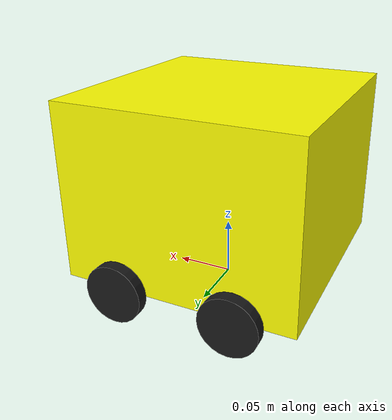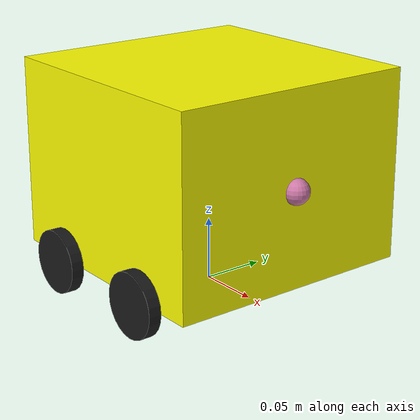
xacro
<?xml version="1.0"?>

<robot name="wallington" xmlns:xacro="http://ros.org/wiki/xacro">

    <xacro:include filename="$(find wallington_description)/urdf/wallington_gazebo.xacro"/>
    <xacro:include filename="$(find wallington_description)/urdf/wallington_ros2_control.xacro"/>

    <link name="base_footprint" />

    <link name="chassis_link">
        <!-- O robô está com o tamanho certo de chassi, mas falta acertar a massa, meshes e matriz de inércia bonitinho-->
        <inertial>
            <origin xyz="0 0 0.075" rpy="0 0 0"/>
            <mass value = "0.15" />
            <inertia ixx="0.0015625" ixy="0" ixz="0"
                     iyy="0.0015625" iyz="0"
                     izz="0.002" />
        </inertial>
        <visual name="chassis_visual">
            <origin xyz="0 0 0" rpy="0 0 0" />
            <geometry>
                <box size="0.2 0.2 0.15" />
            </geometry>
            <material name="yellow"><color rgba="1.0 1.0 0.0 1.0"/></material>
        </visual>
        <collision name="chassis_collision">
            <origin xyz="0 0 0" rpy="0 0 0" />
            <geometry>
                <box size="0.2 0.2 0.15" />
            </geometry>
        </collision>
    </link>

    <joint name="chassis_joint" type="fixed">
        <parent link="base_footprint"/>
        <child link="chassis_link"/>
        <origin xyz= "0 0 0.1" rpy="0 0 0"/>
    </joint>

    <link name="front_left_wheel_link">
        <inertial>
            <origin xyz="0 0 0" rpy="0 0 0"/>
            <mass value="0.1"/>
            <inertia ixx="1.645833e-5" ixy="0.0" ixz="0.0"
                     iyy="3.125e-5" iyz="0.0"
                     izz="1.645833e-5"/>
        </inertial>

        <visual name='front_left_wheel_visual'>
            <origin xyz="0 0 0" rpy="1.57 0 0" />
            <geometry>
                <cylinder radius="0.025" length="0.01"/>
            </geometry>
            <material name="black"><color rgba="0.1 0.1 0.1 1.0"/></material>
        </visual>

        <collision name='front_left_wheel_collision'>
            <origin xyz="0 0 0" rpy="1.57 0 0"/>
            <geometry>
                <cylinder radius="0.025" length="0.01"/>
            </geometry>
        </collision>
    </link>

    <joint name="front_left_wheel_joint" type="continuous">
        <origin xyz="0.05 0.105 -0.075" rpy="0.0 0.0 0.0"/>
        <parent link="chassis_link"/>
        <child link ="front_left_wheel_link"/>
        <axis xyz="0 1 0"/>
    </joint>

    <link name="front_right_wheel_link">
        <inertial>
            <origin xyz="0 0 0" rpy="0 0 0"/>
            <mass value="0.1"/>
            <inertia ixx="1.645833e-5" ixy="0.0" ixz="0.0"
                     iyy="3.125e-5" iyz="0.0"
                     izz="1.645833e-5"/>
        </inertial>

        <visual name='front_right_wheel_visual'>
            <origin xyz="0 0 0" rpy="1.57 0 0" />
            <geometry>
                <cylinder radius="0.025" length="0.01"/>
            </geometry>
            <material name="black"><color rgba="0.1 0.1 0.1 1.0"/></material>
        </visual>

        <collision name='front_right_wheel_collision'>
            <origin xyz="0 0 0" rpy="1.57 0 0"/>
            <geometry>
                <cylinder radius="0.025" length="0.01"/>
            </geometry>
        </collision>
    </link>

    <joint name="front_right_wheel_joint" type="continuous">
        <origin xyz="0.05 -0.105 -0.075" rpy="0.0 0.0 0.0"/>
        <parent link="chassis_link"/>
        <child link ="front_right_wheel_link"/>
        <axis xyz="0 1 0"/>
    </joint>

    <link name="back_left_wheel_link">
        <inertial>
            <origin xyz="0 0 0" rpy="0 0 0"/>
            <mass value="0.1"/>
            <inertia ixx="1.645833e-5" ixy="0.0" ixz="0.0"
                     iyy="3.125e-5" iyz="0.0"
                     izz="1.645833e-5"/>
        </inertial>

        <visual name='back_left_wheel_visual'>
            <origin xyz="0 0 0" rpy="1.57 0 0" />
            <geometry>
                <cylinder radius="0.025" length="0.01"/>
            </geometry>
            <material name="black"><color rgba="0.1 0.1 0.1 1.0"/></material>
        </visual>

        <collision name='back_left_wheel_collision'>
            <origin xyz="0 0 0" rpy="1.57 0 0"/>
            <geometry>
                <cylinder radius="0.025" length="0.01"/>
            </geometry>
        </collision>
    </link>

    <joint name="back_left_wheel_joint" type="continuous">
        <origin xyz="-0.05 0.105 -0.075" rpy="0.0 0.0 0.0"/>
        <parent link="chassis_link"/>
        <child link ="back_left_wheel_link"/>
        <axis xyz="0 1 0"/>
    </joint>

    <link name="back_right_wheel_link">
        <inertial>
            <origin xyz="0 0 0" rpy="0 0 0"/>
            <mass value="0.1"/>
            <inertia ixx="1.645833e-5" ixy="0.0" ixz="0.0"
                     iyy="3.125e-5" iyz="0.0"
                     izz="1.645833e-5"/>
        </inertial>

        <visual name='back_right_wheel_visual'>
            <origin xyz="0 0 0" rpy="1.57 0 0" />
            <geometry>
                <cylinder radius="0.025" length="0.01"/>
            </geometry>
            <material name="black"><color rgba="0.1 0.1 0.1 1.0"/></material>
        </visual>

        <collision name='back_right_wheel_collision'>
            <origin xyz="0 0 0" rpy="1.57 0 0"/>
            <geometry>
                <cylinder radius="0.025" length="0.01"/>
            </geometry>
        </collision>
    </link>

    <joint name="back_right_wheel_joint" type="continuous">
        <origin xyz="-0.05 -0.105 -0.075" rpy="0.0 0.0 0.0"/>
        <parent link="chassis_link"/>
        <child link ="back_right_wheel_link"/>
        <axis xyz="0 1 0"/>
    </joint>

    <link name="camera_link">
        <inertial>
            <origin xyz="0 0 0.1" rpy="0 0 0"/>
            <mass value="0.05"/>
            <inertia ixx="2e-6" ixy="0.0" ixz="0.0"
                     iyy="2e-6" iyz="0.0"
                     izz="2e-6"/>
        </inertial>

        <visual>
            <origin xyz="0 0 0" rpy="0 0 0"/>
            <geometry>
                <sphere radius="0.01"/>
            </geometry>
        </visual>

        <collision>
            <origin xyz="0 0 0" rpy="0 0 0"/>
            <geometry>
                <sphere radius="0.01"/>
            </geometry>
        </collision>
    </link>

    <joint name="camera_joint" type="fixed">
        <origin xyz="0.1 0 0" rpy="0 0 0"/>
        <parent link="chassis_link"/>
        <child link="camera_link"/>
        <axis xyz="0 0 0"/>
    </joint>

</robot>
